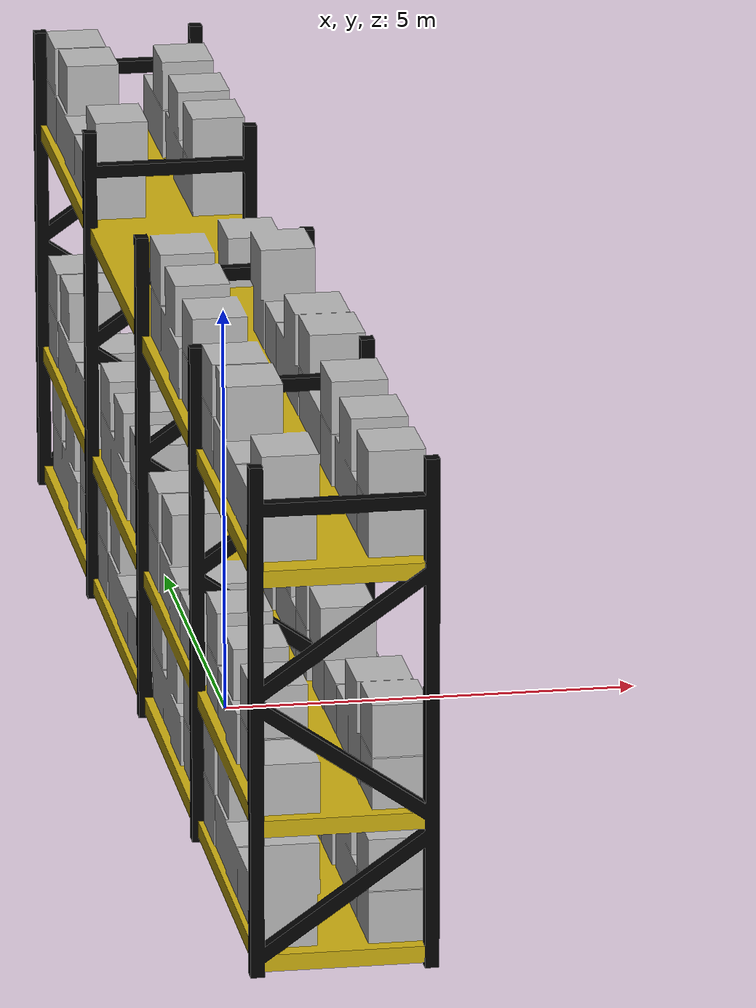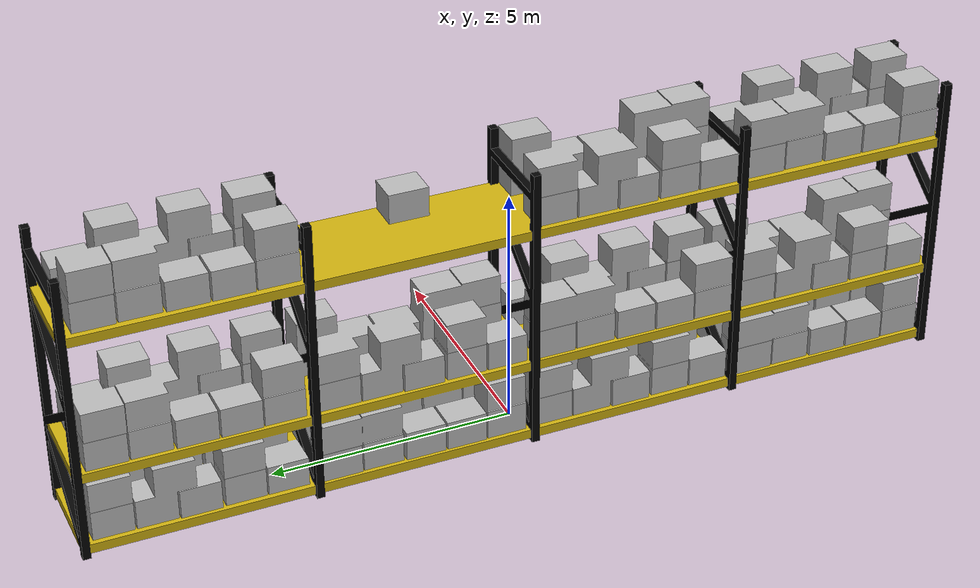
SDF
<?xml version="1.0" ?>
<sdf version="1.6">
  <model name="shelf_big">
    <static>1</static>
    <link name="shelf_big_base">
      <collision name="shelf_big_chassi_collision">
        <pose>0 0 3 0 -0 0</pose>
        <geometry>
          <box>
            <size>2.1 18 6</size>
          </box>
        </geometry>
      </collision>
      <visual name="shelf_big_chassi_visual">
        <pose>0 0 0 0 -0 1.5708</pose>
        <geometry>
          <mesh>
            <scale>1 1 1</scale>
            <uri>model://shelf_big/meshes/shelf_big_movai.dae</uri>
          </mesh>
        </geometry>
      </visual>
    </link>
  </model>
</sdf>
